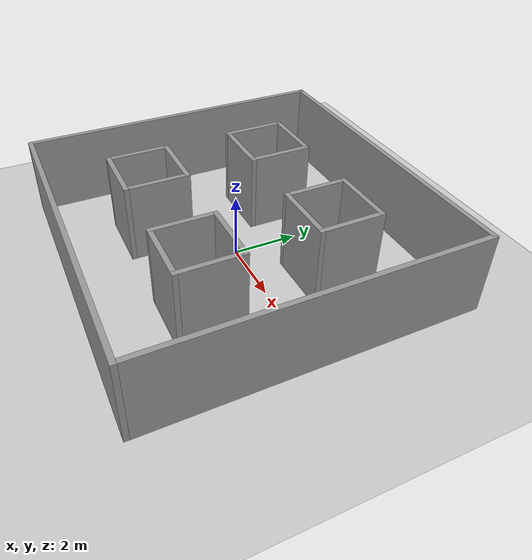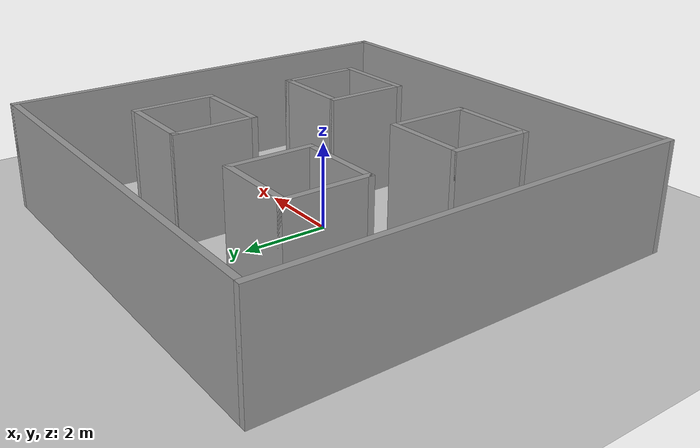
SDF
<sdf version="1.7">
 <world name="default">
  <light name="sun" type="directional">
   <cast_shadows>false</cast_shadows>
   <pose>0 0 10 0 -0 0</pose>
   <diffuse>0.8 0.8 0.8 1</diffuse>
   <specular>0.2 0.2 0.2 1</specular>
   <attenuation>
    <range>1000</range>
    <constant>0.9</constant>
    <linear>0.01</linear>
    <quadratic>0.001</quadratic>
   </attenuation>
   <direction>-0.5 0.1 -0.9</direction>
   <spot><inner_angle>0</inner_angle><outer_angle>0</outer_angle><falloff>0</falloff></spot>
  </light>
  <model name="ground_plane">
   <static>1</static>
   <link name="link">
    <collision name="collision">
     <geometry><plane><normal>0 0 1</normal><size>100 100</size></plane></geometry>
     <surface><friction><ode><mu>100</mu><mu2>50</mu2></ode></friction></surface>
    </collision>
    <visual name="visual">
     <cast_shadows>false</cast_shadows>
     <geometry><plane><normal>0 0 1</normal><size>100 100</size></plane></geometry>
     <material>
      <script><uri>file://media/materials/scripts/gazebo.material</uri><name>Gazebo/Grey</name></script>
     </material>
    </visual>
   </link>
  </model>
  <physics type="ode">
   <real_time_update_rate>1000</real_time_update_rate>
   <max_step_size>0.001</max_step_size>
   <real_time_factor>1</real_time_factor>
   <ode>
    <solver>
     <type>quick</type>
     <iters>150</iters>
     <precon_iters>0</precon_iters>
     <sor>1.4</sor>
     <use_dynamic_moi_rescaling>1</use_dynamic_moi_rescaling>
    </solver>
    <constraints>
     <cfm>1e-05</cfm>
     <erp>0.2</erp>
     <contact_max_correcting_vel>2000</contact_max_correcting_vel>
     <contact_surface_layer>0.01</contact_surface_layer>
    </constraints>
   </ode>
  </physics>
  <scene><ambient>0.4 0.4 0.4 1</ambient><background>0.7 0.7 0.7 1</background><shadows>1</shadows></scene>
  <gravity>0 0 -9.8</gravity>
  <magnetic_field>6e-06 2.3e-05 -4.2e-05</magnetic_field>
  <atmosphere type="adiabatic"/>
  <spherical_coordinates>
   <surface_model>EARTH_WGS84</surface_model>
   <latitude_deg>0</latitude_deg>
   <longitude_deg>0</longitude_deg>
   <elevation>0</elevation>
   <heading_deg>0</heading_deg>
  </spherical_coordinates>
  <model name="Clase">
   <link name="Wall_0">
    <collision name="Wall_0_Collision">
     <geometry><box><size>10 0.15 2.5</size></box></geometry>
     <pose>0 0 1.25 0 -0 0</pose>
    </collision>
    <visual name="Wall_0_Visual">
     <pose>0 0 1.25 0 -0 0</pose>
     <geometry><box><size>10 0.15 2.5</size></box></geometry>
     <material>
      <script><uri>file://media/materials/scripts/gazebo.material</uri><name>Gazebo/Grey</name></script>
      <ambient>0.8 0.8 0.8 1</ambient>
     </material>
     <meta><layer>0</layer></meta>
    </visual>
    <pose>-4.93 -0 0 0 -0 1.5708</pose>
   </link>
   <link name="Wall_1">
    <collision name="Wall_1_Collision">
     <geometry><box><size>0.15 0.15 2.5</size></box></geometry>
     <pose>0 0 1.25 0 -0 0</pose>
    </collision>
    <visual name="Wall_1_Visual">
     <pose>0 0 1.25 0 -0 0</pose>
     <geometry><box><size>0.15 0.15 2.5</size></box></geometry>
     <material>
      <script><uri>file://media/materials/scripts/gazebo.material</uri><name>Gazebo/Grey</name></script>
      <ambient>1 1 1 1</ambient>
     </material>
     <meta><layer>0</layer></meta>
    </visual>
    <pose>-4.93 4.925 0 0 -0 0</pose>
   </link>
   <link name="Wall_2">
    <collision name="Wall_2_Collision">
     <geometry><box><size>10 0.15 2.5</size></box></geometry>
     <pose>0 0 1.25 0 -0 0</pose>
    </collision>
    <visual name="Wall_2_Visual">
     <pose>0 0 1.25 0 -0 0</pose>
     <geometry><box><size>10 0.15 2.5</size></box></geometry>
     <material>
      <script><uri>file://media/materials/scripts/gazebo.material</uri><name>Gazebo/Grey</name></script>
      <ambient>0.8 0.8 0.8 1</ambient>
     </material>
     <meta><layer>0</layer></meta>
    </visual>
    <pose>-0.005 4.925 0 0 -0 0</pose>
   </link>
   <link name="Wall_3">
    <collision name="Wall_3_Collision">
     <geometry><box><size>0.16 0.15 2.5</size></box></geometry>
     <pose>0 0 1.25 0 -0 0</pose>
    </collision>
    <visual name="Wall_3_Visual">
     <pose>0 0 1.25 0 -0 0</pose>
     <geometry><box><size>0.16 0.15 2.5</size></box></geometry>
     <material>
      <script><uri>file://media/materials/scripts/gazebo.material</uri><name>Gazebo/Grey</name></script>
      <ambient>1 1 1 1</ambient>
     </material>
     <meta><layer>0</layer></meta>
    </visual>
    <pose>4.925 4.925 0 0 -0 0</pose>
   </link>
   <link name="Wall_4">
    <collision name="Wall_4_Collision">
     <geometry><box><size>10 0.15 2.5</size></box></geometry>
     <pose>0 0 1.25 0 -0 0</pose>
    </collision>
    <visual name="Wall_4_Visual">
     <pose>0 0 1.25 0 -0 0</pose>
     <geometry><box><size>10 0.15 2.5</size></box></geometry>
     <material>
      <script><uri>file://media/materials/scripts/gazebo.material</uri><name>Gazebo/Grey</name></script>
      <ambient>0.8 0.8 0.8 1</ambient>
     </material>
     <meta><layer>0</layer></meta>
    </visual>
    <pose>4.93 -0 0 0 -0 -1.5708</pose>
   </link>
   <link name="Wall_5">
    <collision name="Wall_5_Collision">
     <geometry><box><size>10.01 0.15 2.5</size></box></geometry>
     <pose>0 0 1.25 0 -0 0</pose>
    </collision>
    <visual name="Wall_5_Visual">
     <pose>0 0 1.25 0 -0 0</pose>
     <geometry><box><size>10.01 0.15 2.5</size></box></geometry>
     <material>
      <script><uri>file://media/materials/scripts/gazebo.material</uri><name>Gazebo/Grey</name></script>
      <ambient>0.8 0.8 0.8 1</ambient>
     </material>
     <meta><layer>0</layer></meta>
    </visual>
    <pose>-0 -4.925 0 0 -0 3.14159</pose>
   </link>
   <static>1</static>
  </model>
  <model name="Mesa">
   <pose>-1.58605 -0.357235 0 0 -0 0</pose>
   <link name="Wall_10">
    <collision name="Wall_10_Collision">
     <geometry><box><size>2 0.15 2.5</size></box></geometry>
     <pose>0 0 1.25 0 -0 0</pose>
    </collision>
    <visual name="Wall_10_Visual">
     <pose>0 0 1.25 0 -0 0</pose>
     <geometry><box><size>2 0.15 2.5</size></box></geometry>
     <material>
      <script><uri>file://media/materials/scripts/gazebo.material</uri><name>Gazebo/Grey</name></script>
      <ambient>0.8 0.8 0.8 1</ambient>
     </material>
     <meta><layer>0</layer></meta>
    </visual>
    <pose>0.515 -1.6445 0 0 -0 -1.5708</pose>
   </link>
   <link name="Wall_11">
    <collision name="Wall_11_Collision">
     <geometry><box><size>2 0.15 2.5</size></box></geometry>
     <pose>0 0 1.25 0 -0 0</pose>
    </collision>
    <visual name="Wall_11_Visual">
     <pose>0 0 1.25 0 -0 0</pose>
     <geometry><box><size>2 0.15 2.5</size></box></geometry>
     <material>
      <script><uri>file://media/materials/scripts/gazebo.material</uri><name>Gazebo/Grey</name></script>
      <ambient>0.8 0.8 0.8 1</ambient>
     </material>
     <meta><layer>0</layer></meta>
    </visual>
    <pose>-0.41 -2.5695 0 0 -0 3.14159</pose>
   </link>
   <link name="Wall_8">
    <collision name="Wall_8_Collision">
     <geometry><box><size>2 0.15 2.5</size></box></geometry>
     <pose>0 0 1.25 0 -0 0</pose>
    </collision>
    <visual name="Wall_8_Visual">
     <pose>0 0 1.25 0 -0 0</pose>
     <geometry><box><size>2 0.15 2.5</size></box></geometry>
     <material>
      <script><uri>file://media/materials/scripts/gazebo.material</uri><name>Gazebo/Grey</name></script>
      <ambient>0.8 0.8 0.8 1</ambient>
     </material>
     <meta><layer>0</layer></meta>
    </visual>
    <pose>-1.335 -1.6445 0 0 -0 1.5708</pose>
   </link>
   <link name="Wall_9">
    <collision name="Wall_9_Collision">
     <geometry><box><size>2 0.15 2.5</size></box></geometry>
     <pose>0 0 1.25 0 -0 0</pose>
    </collision>
    <visual name="Wall_9_Visual">
     <pose>0 0 1.25 0 -0 0</pose>
     <geometry><box><size>2 0.15 2.5</size></box></geometry>
     <material>
      <script><uri>file://media/materials/scripts/gazebo.material</uri><name>Gazebo/Grey</name></script>
      <ambient>0.8 0.8 0.8 1</ambient>
     </material>
     <meta><layer>0</layer></meta>
    </visual>
    <pose>-0.41 -0.7195 0 0 -0 0</pose>
   </link>
   <static>1</static>
  </model>
  <model name="Mesa_clone">
   <pose>2.40017 -0.35279 0 0 -0 0</pose>
   <link name="Wall_10">
    <collision name="Wall_10_Collision">
     <geometry><box><size>2 0.15 2.5</size></box></geometry>
     <pose>0 0 1.25 0 -0 0</pose>
    </collision>
    <visual name="Wall_10_Visual">
     <pose>0 0 1.25 0 -0 0</pose>
     <geometry><box><size>2 0.15 2.5</size></box></geometry>
     <material>
      <script><uri>file://media/materials/scripts/gazebo.material</uri><name>Gazebo/Grey</name></script>
      <ambient>0.8 0.8 0.8 1</ambient>
     </material>
     <meta><layer>0</layer></meta>
    </visual>
    <pose>0.515 -1.6445 0 0 -0 -1.5708</pose>
   </link>
   <link name="Wall_11">
    <collision name="Wall_11_Collision">
     <geometry><box><size>2 0.15 2.5</size></box></geometry>
     <pose>0 0 1.25 0 -0 0</pose>
    </collision>
    <visual name="Wall_11_Visual">
     <pose>0 0 1.25 0 -0 0</pose>
     <geometry><box><size>2 0.15 2.5</size></box></geometry>
     <material>
      <script><uri>file://media/materials/scripts/gazebo.material</uri><name>Gazebo/Grey</name></script>
      <ambient>0.8 0.8 0.8 1</ambient>
     </material>
     <meta><layer>0</layer></meta>
    </visual>
    <pose>-0.41 -2.5695 0 0 -0 3.14159</pose>
   </link>
   <link name="Wall_8">
    <collision name="Wall_8_Collision">
     <geometry><box><size>2 0.15 2.5</size></box></geometry>
     <pose>0 0 1.25 0 -0 0</pose>
    </collision>
    <visual name="Wall_8_Visual">
     <pose>0 0 1.25 0 -0 0</pose>
     <geometry><box><size>2 0.15 2.5</size></box></geometry>
     <material>
      <script><uri>file://media/materials/scripts/gazebo.material</uri><name>Gazebo/Grey</name></script>
      <ambient>0.8 0.8 0.8 1</ambient>
     </material>
     <meta><layer>0</layer></meta>
    </visual>
    <pose>-1.335 -1.6445 0 0 -0 1.5708</pose>
   </link>
   <link name="Wall_9">
    <collision name="Wall_9_Collision">
     <geometry><box><size>2 0.15 2.5</size></box></geometry>
     <pose>0 0 1.25 0 -0 0</pose>
    </collision>
    <visual name="Wall_9_Visual">
     <pose>0 0 1.25 0 -0 0</pose>
     <geometry><box><size>2 0.15 2.5</size></box></geometry>
     <material>
      <script><uri>file://media/materials/scripts/gazebo.material</uri><name>Gazebo/Grey</name></script>
      <ambient>0.8 0.8 0.8 1</ambient>
     </material>
     <meta><layer>0</layer></meta>
    </visual>
    <pose>-0.41 -0.7195 0 0 -0 0</pose>
   </link>
   <static>1</static>
  </model>
  <model name="Mesa_clone_0">
   <pose>-1.589 3.64024 0 0 -0 0</pose>
   <link name="Wall_10">
    <collision name="Wall_10_Collision">
     <geometry><box><size>2 0.15 2.5</size></box></geometry>
     <pose>0 0 1.25 0 -0 0</pose>
    </collision>
    <visual name="Wall_10_Visual">
     <pose>0 0 1.25 0 -0 0</pose>
     <geometry><box><size>2 0.15 2.5</size></box></geometry>
     <material>
      <script><uri>file://media/materials/scripts/gazebo.material</uri><name>Gazebo/Grey</name></script>
      <ambient>0.8 0.8 0.8 1</ambient>
     </material>
     <meta><layer>0</layer></meta>
    </visual>
    <pose>0.515 -1.6445 0 0 -0 -1.5708</pose>
   </link>
   <link name="Wall_11">
    <collision name="Wall_11_Collision">
     <geometry><box><size>2 0.15 2.5</size></box></geometry>
     <pose>0 0 1.25 0 -0 0</pose>
    </collision>
    <visual name="Wall_11_Visual">
     <pose>0 0 1.25 0 -0 0</pose>
     <geometry><box><size>2 0.15 2.5</size></box></geometry>
     <material>
      <script><uri>file://media/materials/scripts/gazebo.material</uri><name>Gazebo/Grey</name></script>
      <ambient>0.8 0.8 0.8 1</ambient>
     </material>
     <meta><layer>0</layer></meta>
    </visual>
    <pose>-0.41 -2.5695 0 0 -0 3.14159</pose>
   </link>
   <link name="Wall_8">
    <collision name="Wall_8_Collision">
     <geometry><box><size>2 0.15 2.5</size></box></geometry>
     <pose>0 0 1.25 0 -0 0</pose>
    </collision>
    <visual name="Wall_8_Visual">
     <pose>0 0 1.25 0 -0 0</pose>
     <geometry><box><size>2 0.15 2.5</size></box></geometry>
     <material>
      <script><uri>file://media/materials/scripts/gazebo.material</uri><name>Gazebo/Grey</name></script>
      <ambient>0.8 0.8 0.8 1</ambient>
     </material>
     <meta><layer>0</layer></meta>
    </visual>
    <pose>-1.335 -1.6445 0 0 -0 1.5708</pose>
   </link>
   <link name="Wall_9">
    <collision name="Wall_9_Collision">
     <geometry><box><size>2 0.15 2.5</size></box></geometry>
     <pose>0 0 1.25 0 -0 0</pose>
    </collision>
    <visual name="Wall_9_Visual">
     <pose>0 0 1.25 0 -0 0</pose>
     <geometry><box><size>2 0.15 2.5</size></box></geometry>
     <material>
      <script><uri>file://media/materials/scripts/gazebo.material</uri><name>Gazebo/Grey</name></script>
      <ambient>0.8 0.8 0.8 1</ambient>
     </material>
     <meta><layer>0</layer></meta>
    </visual>
    <pose>-0.41 -0.7195 0 0 -0 0</pose>
   </link>
   <static>1</static>
  </model>
  <model name="Mesa_clone_1">
   <pose>2.41511 3.64635 0 0 -0 0</pose>
   <link name="Wall_10">
    <collision name="Wall_10_Collision">
     <geometry><box><size>2 0.15 2.5</size></box></geometry>
     <pose>0 0 1.25 0 -0 0</pose>
    </collision>
    <visual name="Wall_10_Visual">
     <pose>0 0 1.25 0 -0 0</pose>
     <geometry><box><size>2 0.15 2.5</size></box></geometry>
     <material>
      <script><uri>file://media/materials/scripts/gazebo.material</uri><name>Gazebo/Grey</name></script>
      <ambient>0.8 0.8 0.8 1</ambient>
     </material>
     <meta><layer>0</layer></meta>
    </visual>
    <pose>0.515 -1.6445 0 0 -0 -1.5708</pose>
   </link>
   <link name="Wall_11">
    <collision name="Wall_11_Collision">
     <geometry><box><size>2 0.15 2.5</size></box></geometry>
     <pose>0 0 1.25 0 -0 0</pose>
    </collision>
    <visual name="Wall_11_Visual">
     <pose>0 0 1.25 0 -0 0</pose>
     <geometry><box><size>2 0.15 2.5</size></box></geometry>
     <material>
      <script><uri>file://media/materials/scripts/gazebo.material</uri><name>Gazebo/Grey</name></script>
      <ambient>0.8 0.8 0.8 1</ambient>
     </material>
     <meta><layer>0</layer></meta>
    </visual>
    <pose>-0.41 -2.5695 0 0 -0 3.14159</pose>
   </link>
   <link name="Wall_8">
    <collision name="Wall_8_Collision">
     <geometry><box><size>2 0.15 2.5</size></box></geometry>
     <pose>0 0 1.25 0 -0 0</pose>
    </collision>
    <visual name="Wall_8_Visual">
     <pose>0 0 1.25 0 -0 0</pose>
     <geometry><box><size>2 0.15 2.5</size></box></geometry>
     <material>
      <script><uri>file://media/materials/scripts/gazebo.material</uri><name>Gazebo/Grey</name></script>
      <ambient>0.8 0.8 0.8 1</ambient>
     </material>
     <meta><layer>0</layer></meta>
    </visual>
    <pose>-1.335 -1.6445 0 0 -0 1.5708</pose>
   </link>
   <link name="Wall_9">
    <collision name="Wall_9_Collision">
     <geometry><box><size>2 0.15 2.5</size></box></geometry>
     <pose>0 0 1.25 0 -0 0</pose>
    </collision>
    <visual name="Wall_9_Visual">
     <pose>0 0 1.25 0 -0 0</pose>
     <geometry><box><size>2 0.15 2.5</size></box></geometry>
     <material>
      <script><uri>file://media/materials/scripts/gazebo.material</uri><name>Gazebo/Grey</name></script>
      <ambient>0.8 0.8 0.8 1</ambient>
     </material>
     <meta><layer>0</layer></meta>
    </visual>
    <pose>-0.41 -0.7195 0 0 -0 0</pose>
   </link>
   <static>1</static>
  </model>
 </world>
</sdf>
